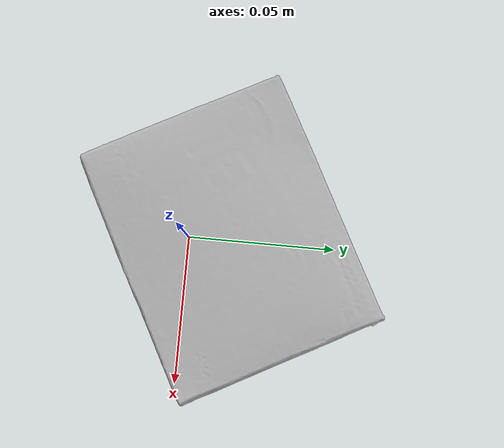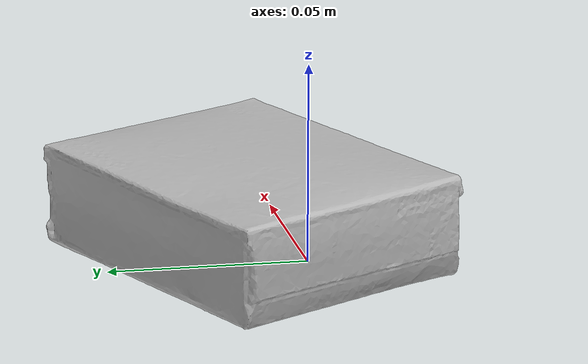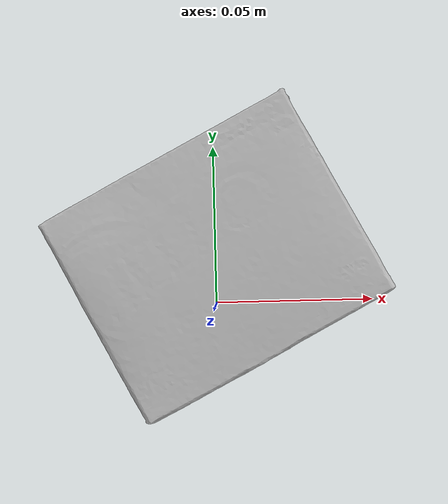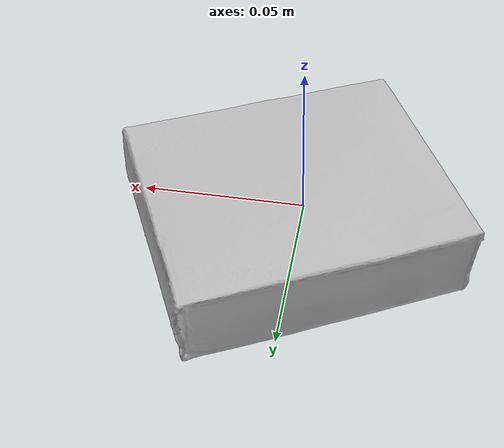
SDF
<?xml version="1.0"?>
<sdf version="1.7">
  <model name="pudding">
    <link name="base_link">

      <!-- Rough inertial properties -->
      <inertial>
        <mass>0.1</mass>
        <inertia>
          <ixx>1e-3</ixx>
          <iyy>1e-3</iyy>
          <izz>1e-3</izz>
        </inertia>
      </inertial>

      <!-- Visual mesh -->
      <visual name="visual">
        <geometry>
          <mesh>
            <uri>google_16k/textured.obj</uri>
            <scale>0.75 0.75 0.75</scale>
          </mesh>
        </geometry>
      </visual>

      <!-- Collision (same mesh for simplicity) -->
      <collision name="collision">
        <geometry>
          <mesh>
            <uri>google_16k/textured.obj</uri>
            <scale>0.75 0.75 0.75</scale>
          </mesh>
        </geometry>
      </collision>

    </link>
  </model>
</sdf>
